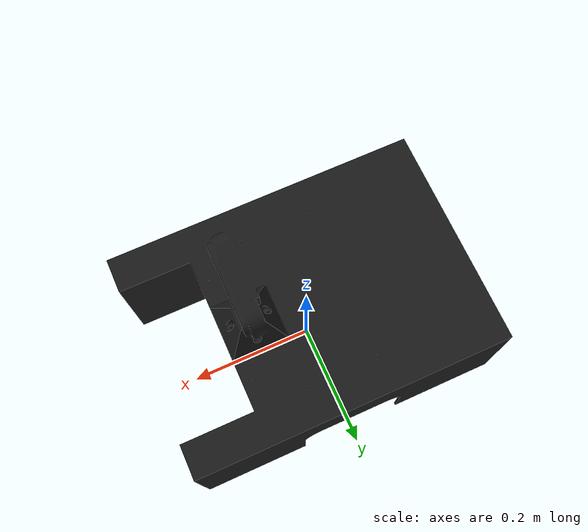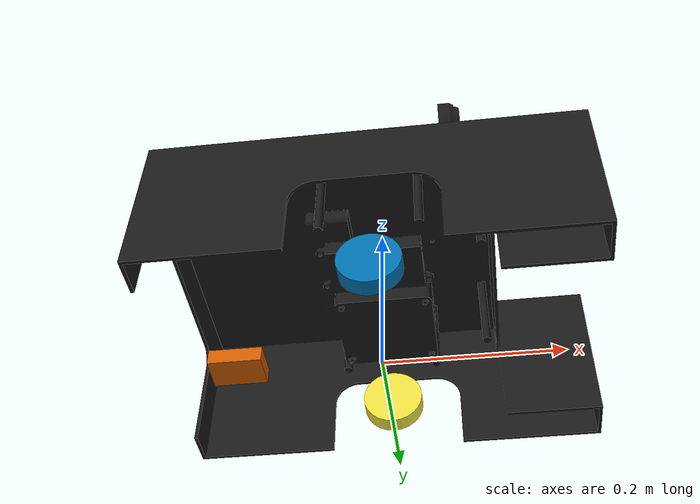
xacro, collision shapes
<?xml version="1.0" ?>
<robot name="mesr" xmlns:xacro="http://ros.org/wiki/xacro">
  <xacro:include filename="$(find mesr_description)/urdf/common_properties.xacro"/>
  <xacro:include filename="$(find mesr_description)/urdf/mesr.gazebo.xacro"/>

  <link name="base_footprint"/>

  <joint name="base_joint" type="fixed">
    <parent link="base_footprint"/>
    <child link="base_link"/>
    <origin xyz="0.0 0.0 0.020" rpy="0 0 0"/>
  </joint>

  <link name="base_link">
    <visual>
      <origin xyz="0 0 0.04" rpy="0 0 0"/>
      <geometry>
        <mesh filename="package://kobuki_description/meshes/main_body.dae" scale="1.0 1.0 1.0"/>
      </geometry>
      <material name="light_black"/>
    </visual>

    <collision>
      <origin xyz="-0.064 0 0.140" rpy="0 0 0"/>
      <geometry>
        <box size="0.0 0.0 0.0"/>
      </geometry>
    </collision>

    <inertial>
      <origin xyz="0 0 0" rpy="0 0 0"/>
      <mass value="8.2573504e-01"/>
      <inertia ixx="2.2124416e-03" ixy="-1.2294101e-05" ixz="3.4938785e-05"
               iyy="2.1193702e-03" iyz="-5.0120904e-06"
               izz="2.0064271e-03" />
    </inertial>
  </link>

    <!-- Enclosure test start -->

  <joint name="encl_joint" type="fixed">
    <parent link="base_link"/>
    <child link="enclosure"/>
    <origin xyz="0.0 0.0 0.0" rpy="0 0 1.5708"/>
 </joint>

  <link name="enclosure">
    <visual>
      <origin xyz="-0.1750 -0.246 -0.010" rpy="0 0 0"/>
      <geometry>
        <mesh filename="package://mesr_description/meshes/bases/sube_rover_enclosure.stl" scale="1.0 1.0 1.0"/>
      </geometry>

     <material name="light_black">
     	<color rgba = "0.1 0.1 0.1 1.0"/>
     </material>

    </visual>

    <collision>
      <origin xyz="-0.1750 -0.246 -0.010" rpy="0 0 0"/>
      <geometry>
        <mesh filename="package://mesr_description/meshes/bases/sube_rover_enclosure.stl" scale="1.0 1.0 1.0"/>
      </geometry>
    </collision>

    <inertial>
      <origin xyz="0 0 0" rpy="0 0 0"/>
      <mass value="0"/>
      <inertia ixx="0" ixy="0" ixz="0"
               iyy="0" iyz="0"
               izz="0" />
    </inertial>
  </link>

  <!-- Enclosure test end -->

  <joint name="wheel_left_joint" type="continuous">
    <parent link="base_link"/>
    <child link="wheel_left_link"/>
    <origin xyz="0.00 0.118 0.016" rpy="-1.57 0 0"/>
    <axis xyz="0 0 1"/>
  </joint>

  <link name="wheel_left_link">
    <visual>
      <origin xyz="0 0 0" rpy="0 0 0"/>
      <geometry>
        <mesh filename="package://mesr_description/meshes/wheels/t2_wheel.dae" scale="1.0 1.0 1.0"/>
      </geometry>
      <material name="dark"/>
    </visual>

    <collision>
      <origin xyz="0 0 0" rpy="0 0 0"/>
      <geometry>
        <cylinder length="0.0206" radius="0.0350"/>
      </geometry>
    </collision>

    <inertial>
      <origin xyz="0 0 0" />
      <mass value="0.01" />
      <inertia ixx="0.001" ixy="0.0" ixz="0.0"
               iyy="0.001" iyz="0.0"
               izz="0.001" />
    </inertial>

  </link>

  <gazebo reference="wheel_left_link">
  <material>
    <mu>30.0</mu>
    <mu2>30.0</mu2>
  </material>
</gazebo>

  <joint name="wheel_right_joint" type="continuous">
    <parent link="base_link"/>
    <child link="wheel_right_link"/>
    <origin xyz="0.00 -0.118 0.016" rpy="-1.57 0 0"/>
    <axis xyz="0 0 1"/>
  </joint>

  <link name="wheel_right_link">
    <visual>
      <origin xyz="0 0 0" rpy="0 0 0"/>
      <geometry>
        <mesh filename="package://mesr_description/meshes/wheels/t2_wheel.dae" scale="1.0 1.0 1.0"/>
      </geometry>
      <material name="dark"/>
    </visual>

    <collision>
      <origin xyz="0 0 0" rpy="0 0 0"/>
      <geometry>
        <cylinder length="0.0206" radius="0.0350"/>
      </geometry>
    </collision>

   <inertial>
      <origin xyz="0 0 0" />
      <mass value="0.01" />
      <inertia ixx="0.001" ixy="0.0" ixz="0.0"
               iyy="0.001" iyz="0.0"
               izz="0.001" />
    </inertial>

  </link>

  <gazebo reference="wheel_right_link">
  <material>
    <mu>30.0</mu>
    <mu2>30.0</mu2>
  </material>
</gazebo>

  <joint name="caster_back_joint" type="fixed">
    <parent link="base_link"/>
    <child link="caster_back_link"/>
    <origin xyz="-0.162 0 -0.008" rpy="-1.57 0 0"/>
  </joint>

  <link name="caster_back_link">
    <collision>
      <origin xyz="0 0.002 0" rpy="0 0 0"/>
      <geometry>
        <box size="0.060 0.018 0.040"/>
      </geometry>
    </collision>

    <inertial>
      <origin xyz="0 0 0" />
      <mass value="0.005" />
      <inertia ixx="0.001" ixy="0.0" ixz="0.0"
               iyy="0.001" iyz="0.0"
               izz="0.001" />
    </inertial>
  </link>

  <joint name="imu_joint" type="fixed">
    <parent link="base_link"/>
    <child link="imu_link"/>
    <origin xyz="-0.064 0 0.136" rpy="0 0 0"/>
  </joint>

  <link name="imu_link"/>

</robot>
